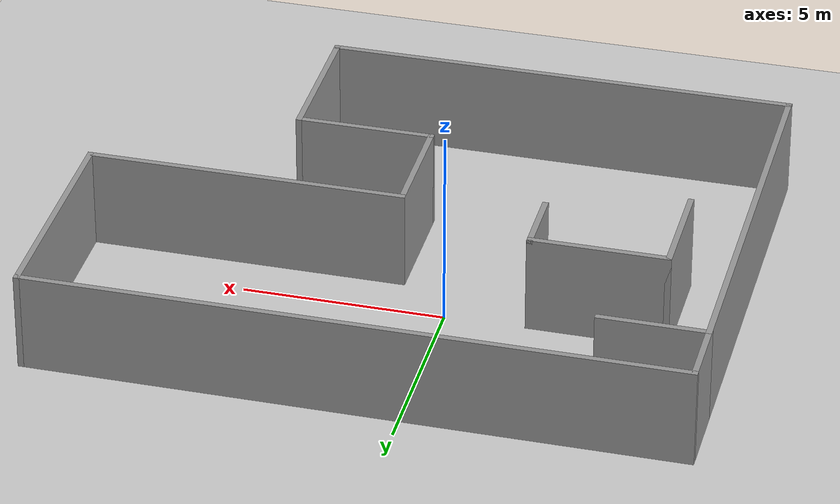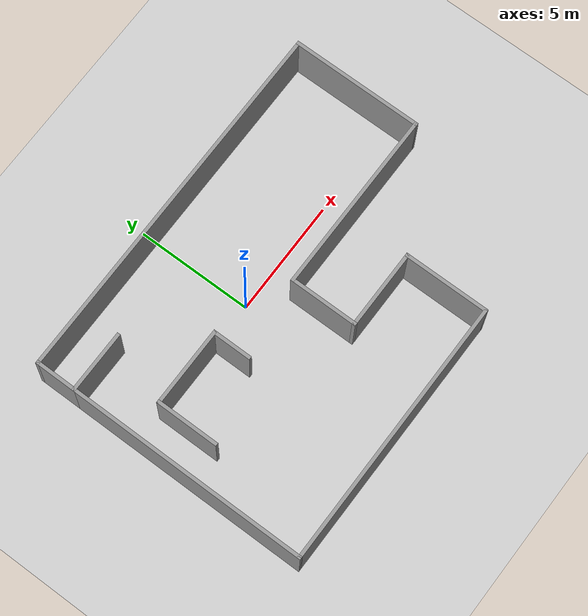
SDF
<sdf version="1.6">
 <world name="default">
  <light name="sun" type="directional">
   <pose>0 0 10 0 -0 0</pose>
   <diffuse>0.8 0.8 0.8 1</diffuse>
   <specular>0.2 0.2 0.2 1</specular>
   <attenuation>
    <range>1000</range>
    <constant>0.9</constant>
    <linear>0.01</linear>
    <quadratic>0.001</quadratic>
   </attenuation>
   <direction>-0.5 0.1 -0.9</direction>
  </light>
  <model name="ground_plane">
   <static>1</static>
   <link name="link">
    <collision name="collision">
     <geometry><plane><normal>0 0 1</normal><size>100 100</size></plane></geometry>
     <surface>
      <contact><collide_bitmask>65535</collide_bitmask></contact>
      <friction><ode><mu>100</mu><mu2>50</mu2></ode></friction>
     </surface>
    </collision>
    <visual name="visual">
     <cast_shadows>0</cast_shadows>
     <geometry><plane><normal>0 0 1</normal><size>100 100</size></plane></geometry>
     <material>
      <script><uri>file://media/materials/scripts/gazebo.material</uri><name>Gazebo/Grey</name></script>
     </material>
    </visual>
   </link>
  </model>
  <gravity>0 0 -9.8</gravity>
  <magnetic_field>6e-06 2.3e-05 -4.2e-05</magnetic_field>
  <atmosphere type="adiabatic"/>
  <physics name="default_physics" default="0" type="ode">
   <max_step_size>0.001</max_step_size>
   <real_time_factor>1</real_time_factor>
   <real_time_update_rate>1000</real_time_update_rate>
  </physics>
  <scene><ambient>0.4 0.4 0.4 1</ambient><background>0.7 0.7 0.7 1</background><shadows>1</shadows></scene>
  <audio><device>default</device></audio>
  <spherical_coordinates>
   <surface_model>EARTH_WGS84</surface_model>
   <latitude_deg>0</latitude_deg>
   <longitude_deg>0</longitude_deg>
   <elevation>0</elevation>
   <heading_deg>0</heading_deg>
  </spherical_coordinates>
  <model name="basic_model">
   <model name="basic_model.jpg">
    <pose>0 3e-06 0 0 -0 0</pose>
    <link name="Wall_29">
     <collision name="Wall_29_Collision">
      <geometry><box><size>10.5 0.15 2.5</size></box></geometry>
      <pose>0 0 1.25 0 -0 0</pose>
     </collision>
     <visual name="Wall_29_Visual">
      <pose>0 0 1.25 0 -0 0</pose>
      <geometry><box><size>10.5 0.15 2.5</size></box></geometry>
      <material>
       <script><uri>file://media/materials/scripts/gazebo.material</uri><name>Gazebo/Grey</name></script>
       <ambient>1 1 1 1</ambient>
      </material>
      <meta><layer>0</layer></meta>
     </visual>
     <pose>-8.05 -0.85 0 0 -0 -1.5708</pose>
    </link>
    <link name="Wall_30">
     <collision name="Wall_30_Collision">
      <geometry><box><size>11.75 0.15 2.5</size></box></geometry>
      <pose>0 0 1.25 0 -0 0</pose>
     </collision>
     <visual name="Wall_30_Visual">
      <pose>0 0 1.25 0 -0 0</pose>
      <geometry><box><size>11.75 0.15 2.5</size></box></geometry>
      <material>
       <script><uri>file://media/materials/scripts/gazebo.material</uri><name>Gazebo/Grey</name></script>
       <ambient>1 1 1 1</ambient>
      </material>
      <meta><layer>0</layer></meta>
     </visual>
     <pose>-2.25 -6.025 0 0 -0 0</pose>
    </link>
    <link name="Wall_31">
     <collision name="Wall_31_Collision">
      <geometry><box><size>3.75 0.15 2.5</size></box></geometry>
      <pose>0 0 1.25 0 -0 0</pose>
     </collision>
     <visual name="Wall_31_Visual">
      <pose>0 0 1.25 0 -0 0</pose>
      <geometry><box><size>3.75 0.15 2.5</size></box></geometry>
      <material>
       <script><uri>file://media/materials/scripts/gazebo.material</uri><name>Gazebo/Grey</name></script>
       <ambient>1 1 1 1</ambient>
      </material>
      <meta><layer>0</layer></meta>
     </visual>
     <pose>3.55 -4.225 0 0 -0 1.5708</pose>
    </link>
    <link name="Wall_32">
     <collision name="Wall_32_Collision">
      <geometry><box><size>3.5 0.15 2.5</size></box></geometry>
      <pose>0 0 1.25 0 -0 0</pose>
     </collision>
     <visual name="Wall_32_Visual">
      <pose>0 0 1.25 0 -0 0</pose>
      <geometry><box><size>3.5 0.15 2.5</size></box></geometry>
      <material>
       <script><uri>file://media/materials/scripts/gazebo.material</uri><name>Gazebo/Grey</name></script>
       <ambient>1 1 1 1</ambient>
      </material>
      <meta><layer>0</layer></meta>
     </visual>
     <pose>1.875 -2.425 0 0 -0 3.14159</pose>
    </link>
    <link name="Wall_33">
     <collision name="Wall_33_Collision">
      <geometry><box><size>3 0.15 2.5</size></box></geometry>
      <pose>0 0 1.25 0 -0 0</pose>
     </collision>
     <visual name="Wall_33_Visual">
      <pose>0 0 1.25 0 -0 0</pose>
      <geometry><box><size>3 0.15 2.5</size></box></geometry>
      <material>
       <script><uri>file://media/materials/scripts/gazebo.material</uri><name>Gazebo/Grey</name></script>
       <ambient>1 1 1 1</ambient>
      </material>
      <meta><layer>0</layer></meta>
     </visual>
     <pose>0.2 -1 0 0 -0 1.5708</pose>
    </link>
    <link name="Wall_34">
     <collision name="Wall_34_Collision">
      <geometry><box><size>8 0.15 2.5</size></box></geometry>
      <pose>0 0 1.25 0 -0 0</pose>
     </collision>
     <visual name="Wall_34_Visual">
      <pose>0 0 1.25 0 -0 0</pose>
      <geometry><box><size>8 0.15 2.5</size></box></geometry>
      <material>
       <script><uri>file://media/materials/scripts/gazebo.material</uri><name>Gazebo/Grey</name></script>
       <ambient>1 1 1 1</ambient>
      </material>
      <meta><layer>0</layer></meta>
     </visual>
     <pose>4.125 0.425 0 0 -0 0</pose>
    </link>
    <link name="Wall_35">
     <collision name="Wall_35_Collision">
      <geometry><box><size>5.75 0.15 2.5</size></box></geometry>
      <pose>0 0 1.25 0 -0 0</pose>
     </collision>
     <visual name="Wall_35_Visual">
      <pose>0 0 1.25 0 -0 0</pose>
      <geometry><box><size>5.75 0.15 2.5</size></box></geometry>
      <material>
       <script><uri>file://media/materials/scripts/gazebo.material</uri><name>Gazebo/Grey</name></script>
       <ambient>1 1 1 1</ambient>
      </material>
      <meta><layer>0</layer></meta>
     </visual>
     <pose>8.05 3.225 0 0 -0 1.5708</pose>
    </link>
    <link name="Wall_36">
     <collision name="Wall_36_Collision">
      <geometry><box><size>16.25 0.15 2.5</size></box></geometry>
      <pose>0 0 1.25 0 -0 0</pose>
     </collision>
     <visual name="Wall_36_Visual">
      <pose>0 0 1.25 0 -0 0</pose>
      <geometry><box><size>16.25 0.15 2.5</size></box></geometry>
      <material>
       <script><uri>file://media/materials/scripts/gazebo.material</uri><name>Gazebo/Grey</name></script>
       <ambient>1 1 1 1</ambient>
      </material>
      <meta><layer>0</layer></meta>
     </visual>
     <pose>-0 6.025 0 0 -0 3.14159</pose>
    </link>
    <link name="Wall_37">
     <collision name="Wall_37_Collision">
      <geometry><box><size>1.85 0.15 2.5</size></box></geometry>
      <pose>0 0 1.25 0 -0 0</pose>
     </collision>
     <visual name="Wall_37_Visual">
      <pose>0 0 1.25 0 -0 0</pose>
      <geometry><box><size>1.85 0.15 2.5</size></box></geometry>
      <material>
       <script><uri>file://media/materials/scripts/gazebo.material</uri><name>Gazebo/Grey</name></script>
       <ambient>1 1 1 1</ambient>
      </material>
      <meta><layer>0</layer></meta>
     </visual>
     <pose>-8.05 5.175 0 0 -0 -1.5708</pose>
    </link>
    <link name="Wall_38">
     <collision name="Wall_38_Collision">
      <geometry><box><size>2.75 0.15 2.5</size></box></geometry>
      <pose>0 0 1.25 0 -0 0</pose>
     </collision>
     <visual name="Wall_38_Visual">
      <pose>0 0 1.25 0 -0 0</pose>
      <geometry><box><size>2.75 0.15 2.5</size></box></geometry>
      <material>
       <script><uri>file://media/materials/scripts/gazebo.material</uri><name>Gazebo/Grey</name></script>
       <ambient>1 1 1 1</ambient>
      </material>
      <meta><layer>0</layer></meta>
     </visual>
     <pose>-6.75 4.325 0 0 -0 0</pose>
    </link>
    <static>1</static>
   </model>
   <static>0</static>
   <pose>1.14934 -1.64842 0 0 -0 0</pose>
  </model>
  <model name="wall_section_u">
   <pose>-3.725 -1.42 0 0 -0 0</pose>
   <link name="Wall_0">
    <collision name="Wall_0_Collision">
     <geometry><box><size>2.75 0.15 2.5</size></box></geometry>
     <pose>0 0 1.25 0 -0 0</pose>
    </collision>
    <visual name="Wall_0_Visual">
     <pose>0 0 1.25 0 -0 0</pose>
     <geometry><box><size>2.75 0.15 2.5</size></box></geometry>
     <material>
      <script><uri>file://media/materials/scripts/gazebo.material</uri><name>Gazebo/Grey</name></script>
      <ambient>1 1 1 1</ambient>
     </material>
     <meta><layer>0</layer></meta>
    </visual>
    <pose>-1.675 0 0 0 -0 1.5708</pose>
   </link>
   <link name="Wall_1">
    <collision name="Wall_1_Collision">
     <geometry><box><size>3.5 0.15 2.5</size></box></geometry>
     <pose>0 0 1.25 0 -0 0</pose>
    </collision>
    <visual name="Wall_1_Visual">
     <pose>0 0 1.25 0 -0 0</pose>
     <geometry><box><size>3.5 0.15 2.5</size></box></geometry>
     <material>
      <script><uri>file://media/materials/scripts/gazebo.material</uri><name>Gazebo/Grey</name></script>
      <ambient>1 1 1 1</ambient>
     </material>
     <meta><layer>0</layer></meta>
    </visual>
    <pose>0 1.3 0 0 -0 0</pose>
   </link>
   <link name="Wall_2">
    <collision name="Wall_2_Collision">
     <geometry><box><size>1.75 0.15 2.5</size></box></geometry>
     <pose>0 0 1.25 0 -0 0</pose>
    </collision>
    <visual name="Wall_2_Visual">
     <pose>0 0 1.25 0 -0 0</pose>
     <geometry><box><size>1.75 0.15 2.5</size></box></geometry>
     <material>
      <script><uri>file://media/materials/scripts/gazebo.material</uri><name>Gazebo/Grey</name></script>
      <ambient>1 1 1 1</ambient>
     </material>
     <meta><layer>0</layer></meta>
    </visual>
    <pose>1.675 0.5 0 0 -0 -1.5708</pose>
   </link>
   <static>1</static>
  </model>
 </world>
</sdf>
